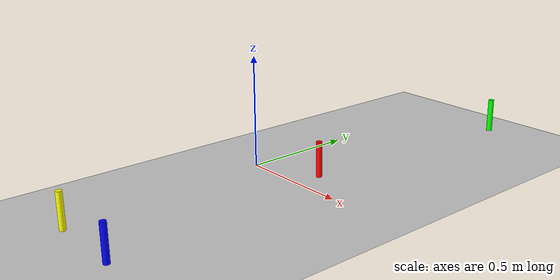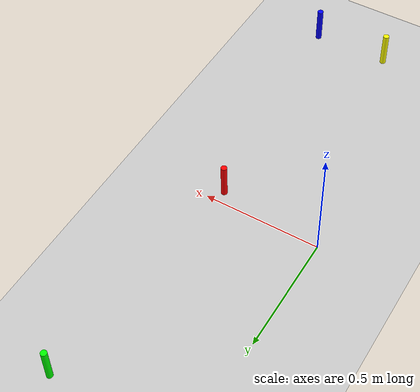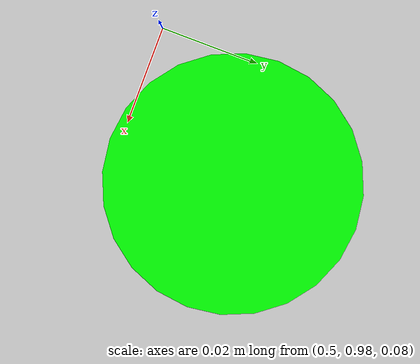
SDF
<?xml version="1.0" ?>

<sdf version="1.7">
  <world name="default">

    <!-- Plugin for simulating physics -->
    <plugin
      filename="gz-sim-physics-system"
      name="gz::sim::systems::Physics">
    </plugin>

    <!-- Plugin for handling user commands -->
    <plugin
      filename="gz-sim-user-commands-system"
      name="gz::sim::systems::UserCommands">
    </plugin>

    <!-- Plugin for broadcasting scene updates -->
    <plugin
      filename="gz-sim-scene-broadcaster-system"
      name="gz::sim::systems::SceneBroadcaster">
    </plugin>

    <!-- Plugin for sensor handling -->
    <plugin
      filename="gz-sim-sensors-system"
      name="gz::sim::systems::Sensors">
      <render_engine>ogre2</render_engine>
    </plugin>

    <!-- To add realistic gravity, do: 0.0 0.0 -9.8, otherwise do 0.0 0.0 0.0 -->
    <gravity>0.0 0.0 -9.8</gravity>

    <!-- Include a model of the Sun from an external URI -->
    <include>
      <uri>
        https://fuel.gazebosim.org/1.0/OpenRobotics/models/Sun
      </uri>
    </include>

    <!-- Include the cylinder model -->
    <include>
      <uri>model://hello_mtc_with_perception_cylinder_red</uri>
      <name>hello_mtc_with_perception_cylinder_red</name>
      <pose>0.42 0.0 0.15 0 0 0</pose>
      <scale>1 1 1</scale>
    </include>

    <include>
      <uri>model://hello_mtc_with_perception_cylinder_green</uri>
      <name>hello_mtc_with_perception_cylinder_green</name>
      <pose>0.52 1.0 0.15 0 0 0</pose>
      <scale>1 1 1</scale>
    </include>

    <include>
      <uri>model://hello_mtc_with_perception_cylinder_blue</uri>
      <name>hello_mtc_with_perception_cylinder_blue</name>
      <pose>0.52 -1.0 0.15 0 0 0</pose>
      <scale>1 1 1</scale>
    </include>

    <include>
      <uri>model://hello_mtc_with_perception_cylinder_yellow</uri>
      <name>hello_mtc_with_perception_cylinder_yellow</name>
      <pose>0.2 -1.0 0.15 0 0 0</pose>
      <scale>1 1 1</scale>
    </include>

    <!-- Include a model of the Ground Plane from an external URI -->
    <include>
      <uri>
        https://fuel.gazebosim.org/1.0/OpenRobotics/models/Ground Plane
      </uri>
    </include>

    <!-- Define scene properties -->
    <scene>
      <shadows>false</shadows>
    </scene>

  </world>
</sdf>

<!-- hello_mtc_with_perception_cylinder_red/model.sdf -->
<sdf version="1.6">
  <model name="hello_mtc_with_perception_cylinder_red">
    <static>false</static>
    <link name="link">
      <inertial>
        <mass>0.050</mass>
        <inertia>
          <ixx>0.000000204</ixx>
          <ixy>0</ixy>
          <ixz>0</ixz>
          <iyy>0.000000204</iyy>
          <iyz>0</iyz>
          <izz>0.000000039</izz>
        </inertia>
      </inertial>
      <collision name="collision">
        <geometry>
          <cylinder>
            <radius>0.015</radius>
            <length>0.15</length>
          </cylinder>
        </geometry>
        <surface>
          <friction>
            <ode>
              <mu>0.8</mu>
              <mu2>0.8</mu2>
              <fdir1>0 0 1</fdir1>
              <slip1>0.001</slip1>
              <slip2>0.001</slip2>
            </ode>
            <torsional>
              <coefficient>0.1</coefficient>
              <surface_radius>0.015</surface_radius>
              <use_patch_radius>true</use_patch_radius>
            </torsional>
          </friction>
          <contact>
            <ode>
              <kp>1e5</kp>
              <kd>10</kd>
              <max_vel>0.1</max_vel>
              <min_depth>0.001</min_depth>
              <soft_cfm>0.01</soft_cfm>
              <soft_erp>0.2</soft_erp>
            </ode>
          </contact>
          <bounce>
            <restitution_coefficient>0.2</restitution_coefficient>
            <threshold>0.01</threshold>
          </bounce>
        </surface>
      </collision>
      <visual name="visual">
        <geometry>
          <cylinder>
            <radius>0.0125</radius>
            <length>0.15</length>
          </cylinder>
        </geometry>
        <material>
          <ambient>1.0 0.0 0.0 1</ambient>
          <diffuse>1.0 0.0 0.0 1</diffuse>
          <specular>0.5 0.5 0.5 1</specular>
          <emissive>0.1 0 0 1</emissive>
        </material>
      </visual>
    </link>
  </model>
</sdf>

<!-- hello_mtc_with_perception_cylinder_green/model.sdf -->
<sdf version="1.6">
  <model name="hello_mtc_with_perception_cylinder_green">
    <static>false</static>
    <link name="link">
      <inertial>
        <mass>0.050</mass>
        <inertia>
          <ixx>0.000000204</ixx>
          <ixy>0</ixy>
          <ixz>0</ixz>
          <iyy>0.000000204</iyy>
          <iyz>0</iyz>
          <izz>0.000000039</izz>
        </inertia>
      </inertial>
      <collision name="collision">
        <geometry>
          <cylinder>
            <radius>0.015</radius>
            <length>0.15</length>
          </cylinder>
        </geometry>
        <surface>
          <friction>
            <ode>
              <mu>0.8</mu>
              <mu2>0.8</mu2>
              <fdir1>0 0 1</fdir1>
              <slip1>0.001</slip1>
              <slip2>0.001</slip2>
            </ode>
            <torsional>
              <coefficient>0.1</coefficient>
              <surface_radius>0.015</surface_radius>
              <use_patch_radius>true</use_patch_radius>
            </torsional>
          </friction>
          <contact>
            <ode>
              <kp>1e5</kp>
              <kd>10</kd>
              <max_vel>0.1</max_vel>
              <min_depth>0.001</min_depth>
              <soft_cfm>0.01</soft_cfm>
              <soft_erp>0.2</soft_erp>
            </ode>
          </contact>
          <bounce>
            <restitution_coefficient>0.2</restitution_coefficient>
            <threshold>0.01</threshold>
          </bounce>
        </surface>
      </collision>
      <visual name="visual">
        <geometry>
          <cylinder>
            <radius>0.0125</radius>
            <length>0.15</length>
          </cylinder>
        </geometry>
        <material>
          <ambient>0.0 1.0 0.0 1</ambient>
          <diffuse>0.0 1.0 0.0 1</diffuse>
          <specular>0.5 0.5 0.5 1</specular>
          <emissive>0.0 0.1 0 1</emissive>
        </material>
      </visual>
    </link>
  </model>
</sdf>

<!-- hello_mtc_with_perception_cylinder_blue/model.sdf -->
<sdf version="1.6">
  <model name="hello_mtc_with_perception_cylinder_blue">
    <static>false</static>
    <link name="link">
      <inertial>
        <mass>0.050</mass>
        <inertia>
          <ixx>0.000000204</ixx>
          <ixy>0</ixy>
          <ixz>0</ixz>
          <iyy>0.000000204</iyy>
          <iyz>0</iyz>
          <izz>0.000000039</izz>
        </inertia>
      </inertial>
      <collision name="collision">
        <geometry>
          <cylinder>
            <radius>0.015</radius>
            <length>0.15</length>
          </cylinder>
        </geometry>
        <surface>
          <friction>
            <ode>
              <mu>0.8</mu>
              <mu2>0.8</mu2>
              <fdir1>0 0 1</fdir1>
              <slip1>0.001</slip1>
              <slip2>0.001</slip2>
            </ode>
            <torsional>
              <coefficient>0.1</coefficient>
              <surface_radius>0.015</surface_radius>
              <use_patch_radius>true</use_patch_radius>
            </torsional>
          </friction>
          <contact>
            <ode>
              <kp>1e5</kp>
              <kd>10</kd>
              <max_vel>0.1</max_vel>
              <min_depth>0.001</min_depth>
              <soft_cfm>0.01</soft_cfm>
              <soft_erp>0.2</soft_erp>
            </ode>
          </contact>
          <bounce>
            <restitution_coefficient>0.2</restitution_coefficient>
            <threshold>0.01</threshold>
          </bounce>
        </surface>
      </collision>
      <visual name="visual">
        <geometry>
          <cylinder>
            <radius>0.0125</radius>
            <length>0.15</length>
          </cylinder>
        </geometry>
      <material>
        <ambient>0.0 0.0 1.0 1</ambient>
        <diffuse>0.0 0.0 1.0 1</diffuse>
        <specular>0.5 0.5 0.5 1</specular>
        <emissive>0.0 0.0 0.1 1</emissive>
      </material>
      </visual>
    </link>
  </model>
</sdf>

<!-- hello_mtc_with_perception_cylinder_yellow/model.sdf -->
<sdf version="1.6">
  <model name="hello_mtc_with_perception_cylinder_red">
    <static>false</static>
    <link name="link">
      <inertial>
        <mass>0.050</mass>
        <inertia>
          <ixx>0.000000204</ixx>
          <ixy>0</ixy>
          <ixz>0</ixz>
          <iyy>0.000000204</iyy>
          <iyz>0</iyz>
          <izz>0.000000039</izz>
        </inertia>
      </inertial>
      <collision name="collision">
        <geometry>
          <cylinder>
            <radius>0.015</radius>
            <length>0.15</length>
          </cylinder>
        </geometry>
        <surface>
          <friction>
            <ode>
              <mu>0.8</mu>
              <mu2>0.8</mu2>
              <fdir1>0 0 1</fdir1>
              <slip1>0.001</slip1>
              <slip2>0.001</slip2>
            </ode>
            <torsional>
              <coefficient>0.1</coefficient>
              <surface_radius>0.015</surface_radius>
              <use_patch_radius>true</use_patch_radius>
            </torsional>
          </friction>
          <contact>
            <ode>
              <kp>1e5</kp>
              <kd>10</kd>
              <max_vel>0.1</max_vel>
              <min_depth>0.001</min_depth>
              <soft_cfm>0.01</soft_cfm>
              <soft_erp>0.2</soft_erp>
            </ode>
          </contact>
          <bounce>
            <restitution_coefficient>0.2</restitution_coefficient>
            <threshold>0.01</threshold>
          </bounce>
        </surface>
      </collision>
      <visual name="visual">
        <geometry>
          <cylinder>
            <radius>0.0125</radius>
            <length>0.15</length>
          </cylinder>
        </geometry>
      <material>
        <ambient>1.0 1.0 0.0 1</ambient>
        <diffuse>1.0 1.0 0.0 1</diffuse>
        <specular>0.5 0.5 0.5 1</specular>
        <emissive>0.1 0.1 0.0 1</emissive>
      </material>
      </visual>
    </link>
  </model>
</sdf>
